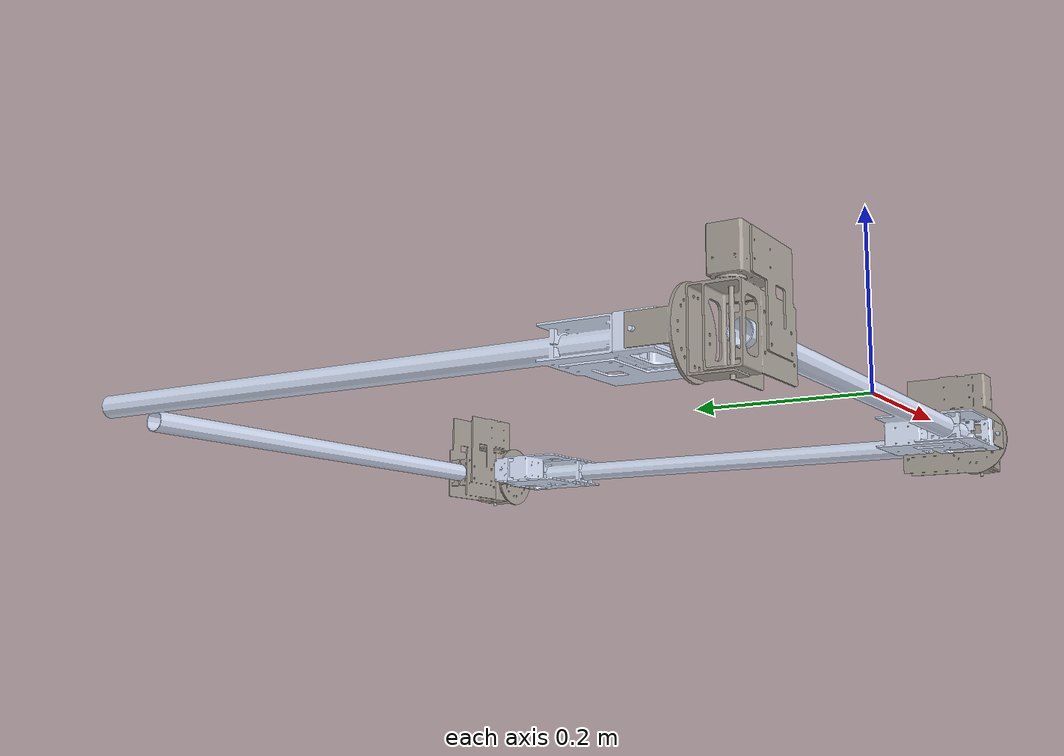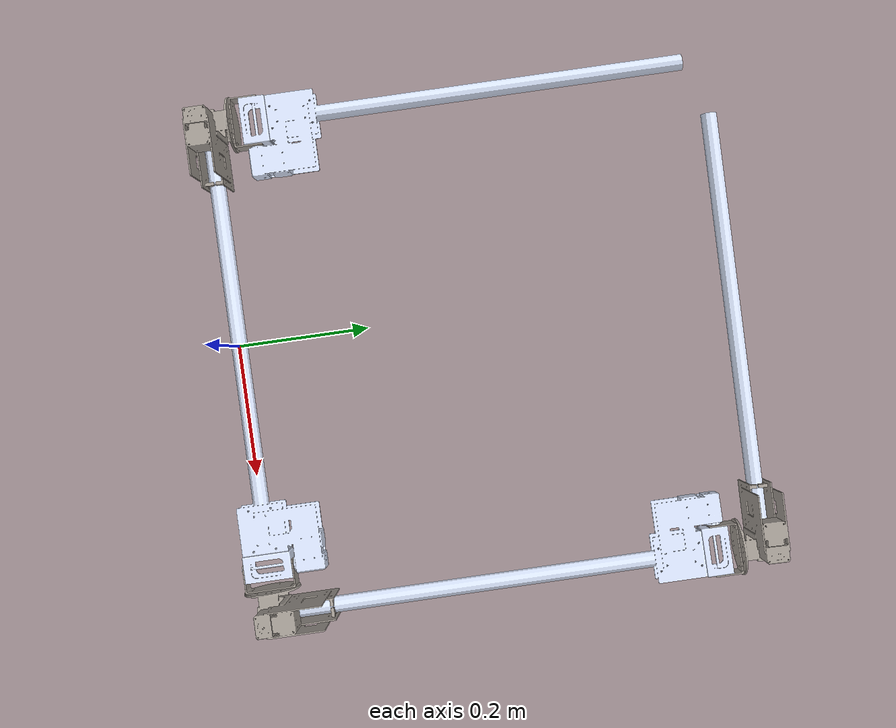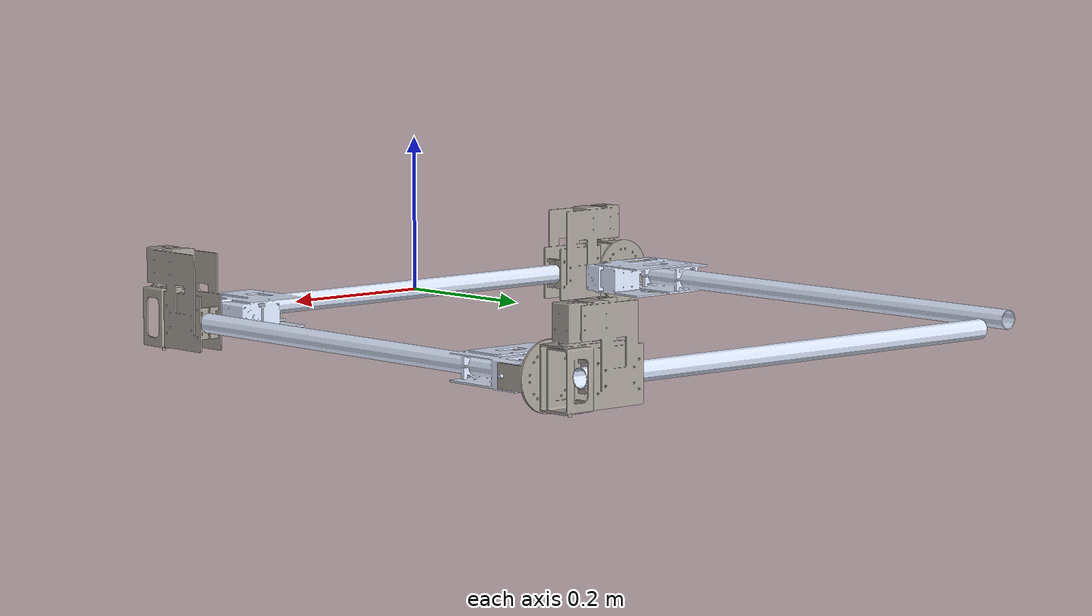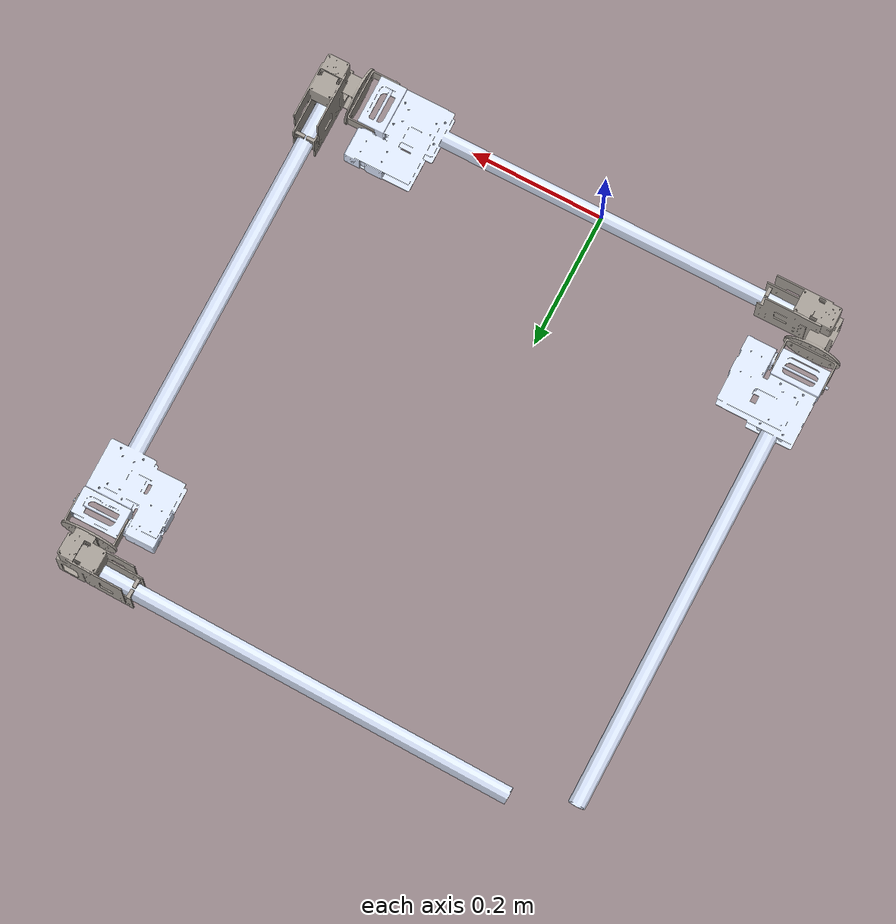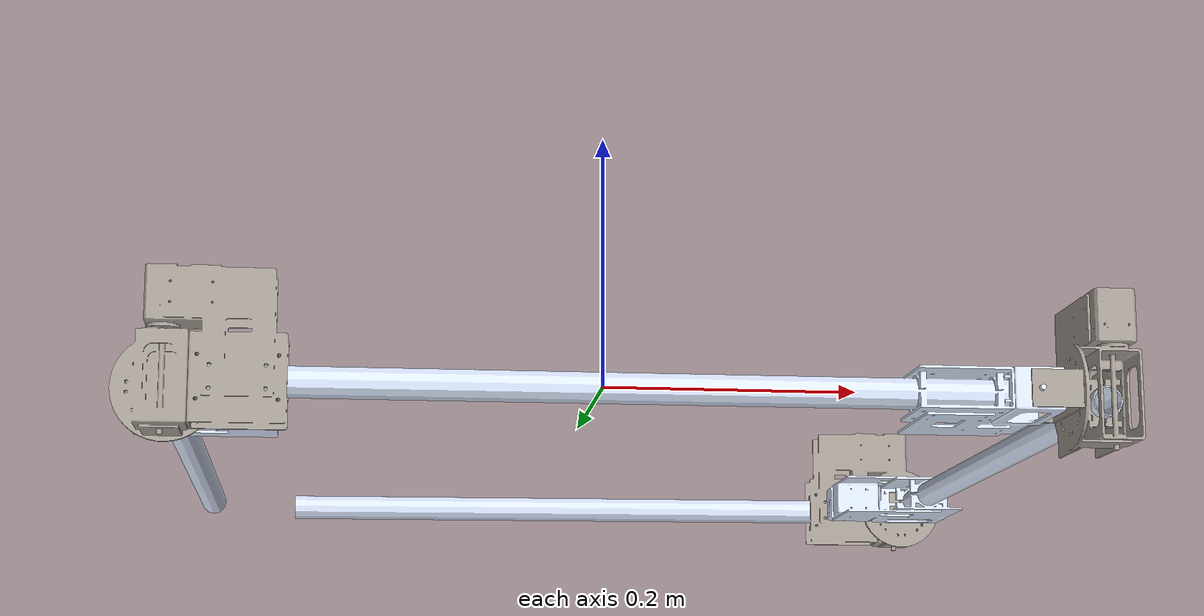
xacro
<?xml version="1.0"?>
<robot name="connectors" xmlns:xacro="http://www.ros.org/wiki/xacro">

  <!-- ===== BASE LINK ===== -->
  <link name="base_link">
    <inertial>
      <origin xyz="0.0710942808422459 0.758997540044407 -0.000334537774211377" rpy="0 0 0" />
      <mass value="0.132323882569202" />
      <inertia ixx="2.16673690412181E-05" ixy="0.00010933271168009" ixz="-5.78092349738168E-06"
               iyy="0.0046658747683856" iyz="1.36017642649256E-07" izz="0.00466844003360906" />
    </inertial>
    <visual>
      <origin xyz="0 0 0" rpy="0 0 0" />
      <geometry>
        <mesh filename="package://serial-articulated/meshes/base_link.STL" />
      </geometry>
      <material name="light_blue">
        <color rgba="0.866666666666667 0.909803921568627 1 1" />
      </material>
    </visual>
    <collision>
      <origin xyz="0 0 0" rpy="0 0 0" />
      <geometry>
        <mesh filename="package://serial-articulated/meshes/base_link.STL" />
      </geometry>
    </collision>
  </link>

  <!-- ===== CONNECTOR 1→2 ===== -->
  <link name="joint1_pitch">
    <inertial>
      <origin xyz="0.026482580537379 0.0067099200307279 0.0674023643088623" rpy="0 0 0" />
      <mass value="0.323307121794733" />
      <inertia ixx="0.00019094018776057" ixy="1.55193420765089E-06" ixz="1.25235179725188E-05"
               iyy="0.00028127097635108" iyz="-2.96716526834112E-07" izz="0.000164349972305016" />
    </inertial>
    <visual>
      <origin xyz="0 0 0" rpy="0 0 0" />
      <geometry>
        <mesh filename="package://serial-articulated/meshes/joint1_pitch.STL" />
      </geometry>
      <material name="tan">
        <color rgba="0.647058823529412 0.619607843137255 0.588235294117647 1" />
      </material>
    </visual>
    <collision>
      <origin xyz="0 0 0" rpy="0 0 0" />
      <geometry>
        <mesh filename="package://serial-articulated/meshes/joint1_pitch.STL" />
      </geometry>
    </collision>
  </link>
  <joint name="joint1_dummy" type="revolute">
    <origin xyz="0.41105 0.751 -0.042412" rpy="0 0.0012441 -3.1416" />
    <parent link="base_link" />
    <child link="joint1_pitch" />
    <axis xyz="0 0 1" />
    <limit lower="-1.5708" upper="1.5708" effort="100" velocity="1.0" />
    <dynamics damping="0.1" friction="0.0" />
  </joint>

  <link name="joint1_yaw">
    <inertial>
      <origin xyz="0.137727139557225 -7.88593466734616E-05 0.063205148193877" rpy="0 0 0" />
      <mass value="0.388844913230588" />
      <inertia ixx="0.00016784589299931" ixy="-1.18907200392012E-08" ixz="1.25270353468353E-05"
               iyy="0.00488304515467424" iyz="1.12865436086612E-07" izz="0.00479065192326079" />
    </inertial>
    <visual>
      <origin xyz="0 0 0" rpy="0 0 0" />
      <geometry>
        <mesh filename="package://serial-articulated/meshes/joint1_yaw.STL" />
      </geometry>
      <material name="light_blue">
        <color rgba="0.866666666666667 0.909803921568627 1 1" />
      </material>
    </visual>
    <collision>
      <origin xyz="0 0 0" rpy="0 0 0" />
      <geometry>
        <mesh filename="package://serial-articulated/meshes/joint1_yaw.STL" />
      </geometry>
    </collision>
  </link>
  <joint name="link2_main_tube" type="fixed">
    <origin xyz="-0.0425 0.071 0.0425" rpy="1.5696 0 1.5708" />
    <parent link="joint1_pitch" />
    <child link="joint1_yaw" />
  </joint>

  <!-- ===== CONNECTOR 2→3 ===== -->
  <link name="Joint2_pitch">
    <inertial>
      <origin xyz="-0.0264899163309105 0.00741686795025043 -0.067393189358937" rpy="0 0 0" />
      <mass value="0.323307121796142" />
      <inertia ixx="0.000190903585300382" ixy="-1.92536747920891E-08" ixz="1.25270186437505E-05"
               iyy="0.000281307392689055" iyz="1.47557164284561E-07" izz="0.000164350158432045" />
    </inertial>
    <visual>
      <origin xyz="0 0 0" rpy="0 0 0" />
      <geometry>
        <mesh filename="package://serial-articulated/meshes/Joint2_pitch.STL" />
      </geometry>
      <material name="tan">
        <color rgba="0.647058823529412 0.619607843137255 0.588235294117647 1" />
      </material>
    </visual>
    <collision>
      <origin xyz="0 0 0" rpy="0 0 0" />
      <geometry>
        <mesh filename="package://serial-articulated/meshes/Joint2_pitch.STL" />
      </geometry>
    </collision>
  </link>
  <joint name="joint2_dummy" type="revolute">
    <origin xyz="0.68 -0.042553 0.042447" rpy="1.5708 0 0" />
    <parent link="joint1_yaw" />
    <child link="Joint2_pitch" />
    <axis xyz="0 0 1" />
    <limit lower="-1.5708" upper="1.5708" effort="100" velocity="1.0" />
    <dynamics damping="0.1" friction="0.0" />
  </joint>

  <link name="joint2_yaw">
    <inertial>
      <origin xyz="0.13772713955714 -2.27662269981965E-07 0.0632051973888087" rpy="0 0 0" />
      <mass value="0.388844913230465" />
      <inertia ixx="0.000167845892999256" ixy="3.69379698468947E-09" ixz="1.25270404456003E-05"
               iyy="0.00488304529250104" iyz="-2.07846394214535E-09" izz="0.00479065178543387" />
    </inertial>
    <visual>
      <origin xyz="0 0 0" rpy="0 0 0" />
      <geometry>
        <mesh filename="package://serial-articulated/meshes/joint2_yaw.STL" />
      </geometry>
      <material name="light_blue">
        <color rgba="0.866666666666667 0.909803921568627 1 1" />
      </material>
    </visual>
    <collision>
      <origin xyz="0 0 0" rpy="0 0 0" />
      <geometry>
        <mesh filename="package://serial-articulated/meshes/joint2_yaw.STL" />
      </geometry>
    </collision>
  </link>
  <joint name="link3_main_tube" type="fixed">
    <origin xyz="0.0425 0.071053 -0.042412" rpy="-1.5708 0 1.5708" />
    <parent link="Joint2_pitch" />
    <child link="joint2_yaw" />
  </joint>

  <!-- ===== CONNECTOR 3→4 ===== -->
  <link name="joint3_pitch">
    <inertial>
      <origin xyz="0.0264899163310516 0.00733302037051284 0.0674023643089112" rpy="0 0 0" />
      <mass value="0.323307121794285" />
      <inertia ixx="0.000190903585297312" ixy="3.66917552913286E-09" ixz="1.25270329025918E-05"
               iyy="0.00028130757881418" iyz="-2.05384337523967E-09" izz="0.000164349972304898" />
    </inertial>
    <visual>
      <origin xyz="0 0 0" rpy="0 0 0" />
      <geometry>
        <mesh filename="package://serial-articulated/meshes/joint3_pitch.STL" />
      </geometry>
      <material name="tan">
        <color rgba="0.647058823529412 0.619607843137255 0.588235294117647 1" />
      </material>
    </visual>
    <collision>
      <origin xyz="0 0 0" rpy="0 0 0" />
      <geometry>
        <mesh filename="package://serial-articulated/meshes/joint3_pitch.STL" />
      </geometry>
    </collision>
  </link>
  <joint name="Joint3_dummy" type="revolute">
    <origin xyz="0.68 -0.0425 0.0425" rpy="1.5708 0 3.1416" />
    <parent link="joint2_yaw" />
    <child link="joint3_pitch" />
    <axis xyz="0 0 1" />
    <limit lower="-1.5708" upper="1.5708" effort="100" velocity="1.0" />
    <dynamics damping="0.1" friction="0.0" />
  </joint>

  <link name="joint3_yaw">
    <inertial>
      <origin xyz="0.13772713955714 -2.27662270044259E-07 0.0632051973888075" rpy="0 0 0" />
      <mass value="0.388844913230465" />
      <inertia ixx="0.000167845892999256" ixy="3.69379698455331E-09" ixz="1.25270404456005E-05"
               iyy="0.00488304529250104" iyz="-2.07846394215955E-09" izz="0.00479065178543386" />
    </inertial>
    <visual>
      <origin xyz="0 0 0" rpy="0 0 0" />
      <geometry>
        <mesh filename="package://serial-articulated/meshes/joint3_yaw.STL" />
      </geometry>
      <material name="light_blue">
        <color rgba="0.866666666666667 0.909803921568627 1 1" />
      </material>
    </visual>
    <collision>
      <origin xyz="0 0 0" rpy="0 0 0" />
      <geometry>
        <mesh filename="package://serial-articulated/meshes/joint3_yaw.STL" />
      </geometry>
    </collision>
  </link>
  <joint name="link4_main_tube" type="fixed">
    <origin xyz="-0.0425 0.071 0.0425" rpy="1.5708 0 1.5708" />
    <parent link="joint3_pitch" />
    <child link="joint3_yaw" />
  </joint>

</robot>
